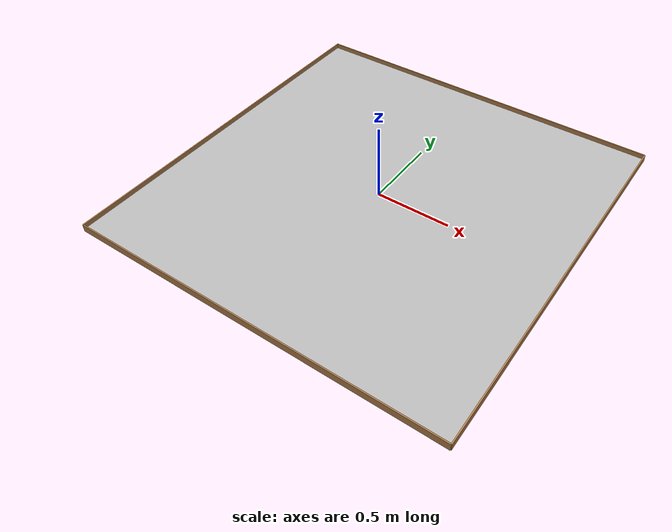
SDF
<?xml version="1.0"?>
<sdf version="1.6">
  <model name="Arena Test">
    <pose> 0 0 0.009 0 0 0 </pose>
    <static>true</static>
    <link name="arena">
      <!-- Sol de l'arène -->
      <collision name="arena_collision">
        <geometry>
          <box>
            <size>2.5 2.5 0.018</size>
          </box>
        </geometry>
      </collision>

      <visual name="arena_visual">
        <geometry>
          <box>
            <size>2.5 2.5 0.018</size>
          </box>
        </geometry>
	<material>
	  <script>
		<name>Gazebo/TextureArene</name> <!-- Texture de l'arène -->
	  </script>
	</material>
      </visual>

      <!-- Bordure de l'arène -->
      <collision name="border_collision1">
        <geometry>
          <box>
            <size>0.008 2.5 0.05</size>
          </box>
        </geometry>
      </collision>

      <visual name="border_visual1">
	<pose>-1.25 0 0.016 0 0 0</pose>
        <geometry>
          <box>
            <size>0.008 2.5 0.05</size>
          </box>
        </geometry>
	<material>
	  <script>
		<name>Gazebo/Wood</name> <!-- Texture bois pour la planche -->
	  </script>
	</material>
      </visual>

      <!-- Bordure de l'arène -->
      <collision name="border_collision2">
        <geometry>
          <box>
            <size>0.008 2.5 0.05</size>
          </box>
        </geometry>
      </collision>

      <visual name="border_visual2">
	<pose>1.25 0 0.016 0 0 0</pose>
        <geometry>
          <box>
            <size>0.008 2.5 0.05</size>
          </box>
        </geometry>
	<material>
	  <script>
		<name>Gazebo/Wood</name> <!-- Texture bois pour la planche -->
	  </script>
	</material>
      </visual>

      <!-- Bordure de l'arène -->
      <collision name="border_collision3">
        <geometry>
          <box>
            <size>2.5 0.008 0.05</size>
          </box>
        </geometry>
      </collision>

      <visual name="border_visual3">
	<pose>0 -1.25 0.016 0 0 0</pose>
        <geometry>
          <box>
            <size>2.5 0.008 0.05</size>
          </box>
        </geometry>
	<material>
	  <script>
		<name>Gazebo/Wood</name> <!-- Texture bois pour la planche -->
	  </script>
	</material>
      </visual>

      <!-- Bordure de l'arène -->
      <collision name="border_collision4">
        <geometry>
          <box>
            <size>2.5 0.008 0.05</size>
          </box>
        </geometry>
      </collision>

      <visual name="border_visual4">
	<pose>0 1.25 0.016 0 0 0</pose>
        <geometry>
          <box>
            <size>2.5 0.008 0.05</size>
          </box>
        </geometry>
	<material>
	  <script>
		<name>Gazebo/Wood</name> <!-- Texture bois pour la planche -->
	  </script>
	</material>
      </visual>
    </link>
  </model>
</sdf>
